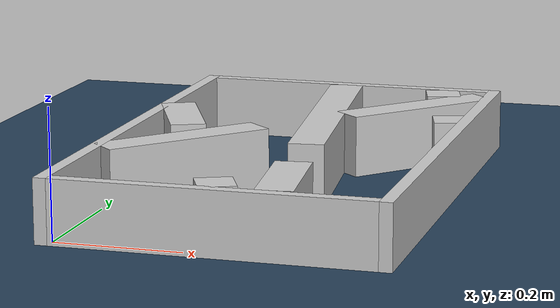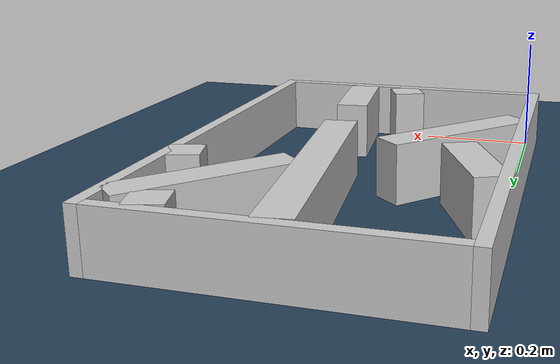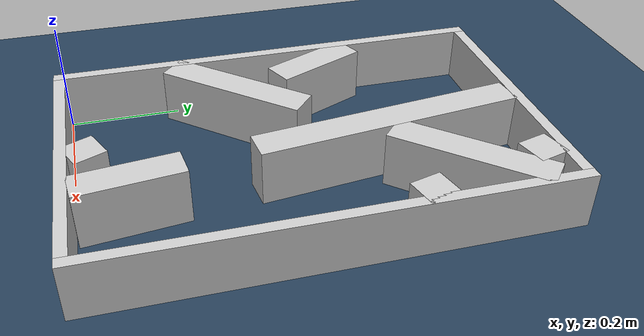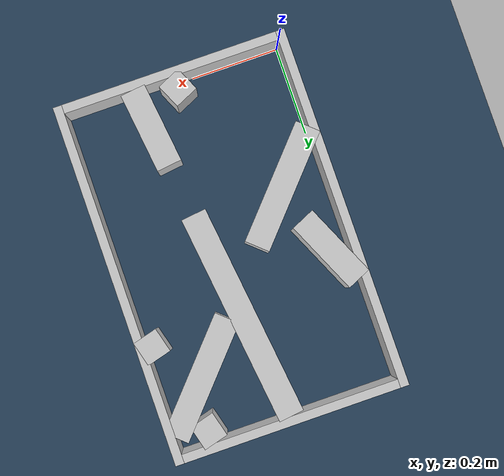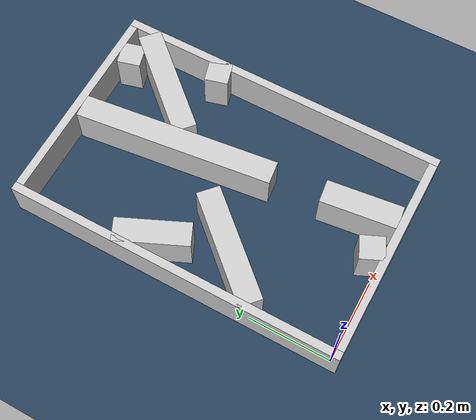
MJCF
<?xml version="1.0" ?>
<mujoco model="generated_real_template">
  <compiler angle="degree"/>
  <option timestep="0.002" integrator="implicitfast" iterations="100" cone="elliptic"/>
  <default>
    <geom density="1"/>
  </default>
  <asset>
    <texture builtin="gradient" height="3072" rgb1="0.3 0.5 0.7" rgb2="0 0 0" type="skybox" width="512"/>
    <texture builtin="checker" height="300" mark="edge" markrgb="0.8 0.8 0.8" name="groundplane" rgb1="0.2 0.3 0.4" rgb2="0.1 0.2 0.3" type="2d" width="300"/>
    <material name="groundplane" reflectance="0.2" texrepeat="5 5" texture="groundplane" texuniform="true"/>
  </asset>
  <worldbody>
    <light dir="0 0 -1" directional="true" pos="0 0 1.5"/>
    <geom name="floor" type="plane" condim="4" friction="0.5 0.005 0.001" material="groundplane" size="0 0 0.05"/>
    <body name="walls">
      <geom name="wall_boundary_left" type="box" condim="4" friction="1.0 0.005 0.0001" rgba="0.8 0.8 0.8 1" pos="-0.010000 0.387500 0.050000" euler="0 0 0.000000" size="0.010000 0.407500 0.050000"/>
      <geom name="wall_boundary_right" type="box" condim="4" friction="1.0 0.005 0.0001" rgba="0.8 0.8 0.8 1" pos="0.500000 0.387500 0.050000" euler="0 0 0.000000" size="0.010000 0.407500 0.050000"/>
      <geom name="wall_boundary_bottom" type="box" condim="4" friction="1.0 0.005 0.0001" rgba="0.8 0.8 0.8 1" pos="0.245000 -0.010000 0.050000" euler="0 0 0.000000" size="0.245000 0.010000 0.050000"/>
      <geom name="wall_boundary_top" type="box" condim="4" friction="1.0 0.005 0.0001" rgba="0.8 0.8 0.8 1" pos="0.245000 0.785000 0.050000" euler="0 0 0.000000" size="0.245000 0.010000 0.050000"/>
      <geom name="wall_inner_1_1" type="box" condim="4" friction="1.0 0.005 0.0001" rgba="0.8 0.8 0.8 1" pos="0.095904 0.302802 0.050000" euler="0 0 47.963382" size="0.141480 0.028500 0.050000"/>
      <geom name="wall_inner_1_2" type="box" condim="4" friction="1.0 0.005 0.0001" rgba="0.8 0.8 0.8 1" pos="0.395449 0.635053 0.050000" euler="0 0 47.963382" size="0.139459 0.028500 0.050000"/>
      <geom name="wall_inner_2_1" type="box" condim="4" friction="1.0 0.005 0.0001" rgba="0.8 0.8 0.8 1" pos="0.475049 0.538099 0.050000" euler="0 0 105.124484" size="0.028503 0.028500 0.050000"/>
      <geom name="wall_inner_2_2" type="box" condim="4" friction="1.0 0.005 0.0001" rgba="0.8 0.8 0.8 1" pos="0.418465 0.747454 0.050000" euler="0 0 105.124484" size="0.028535 0.028500 0.050000"/>
      <geom name="wall_inner_3_1" type="box" condim="4" friction="1.0 0.005 0.0001" rgba="0.8 0.8 0.8 1" pos="0.269193 0.536448 0.050000" euler="0 0 -83.100063" size="0.240292 0.028500 0.050000"/>
      <geom name="wall_inner_3_2" type="box" condim="4" friction="1.0 0.005 0.0001" rgba="0.8 0.8 0.8 1" pos="0.323179 0.090332 0.050000" euler="0 0 -83.100063" size="0.090991 0.028500 0.050000"/>
      <geom name="wall_inner_4_1" type="box" condim="4" friction="1.0 0.005 0.0001" rgba="0.8 0.8 0.8 1" pos="0.042267 0.464955 0.050000" euler="0 0 -65.735017" size="0.088291 0.028500 0.050000"/>
      <geom name="wall_inner_4_2" type="box" condim="4" friction="1.0 0.005 0.0001" rgba="0.8 0.8 0.8 1" pos="0.239896 0.026541 0.050000" euler="0 0 -65.735017" size="0.029113 0.028500 0.050000"/>
    </body>
  </worldbody>
</mujoco>
